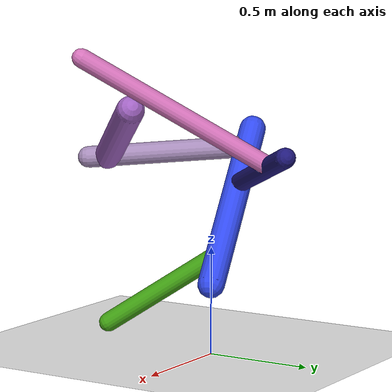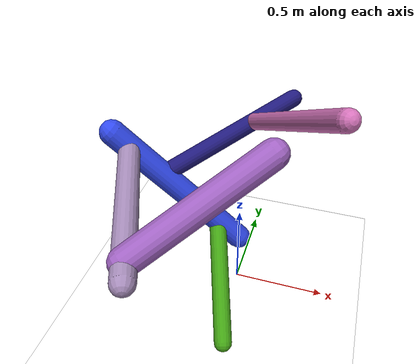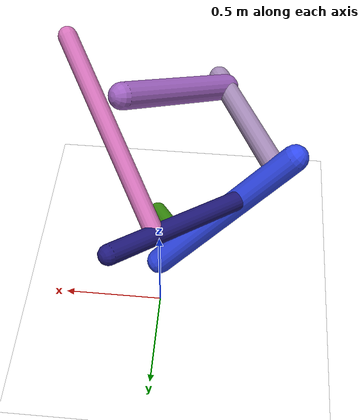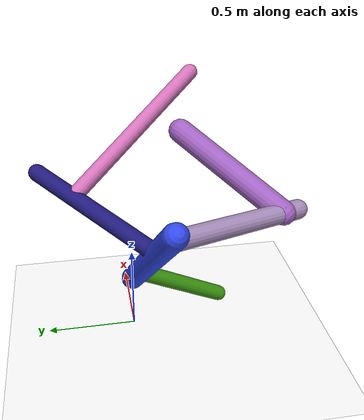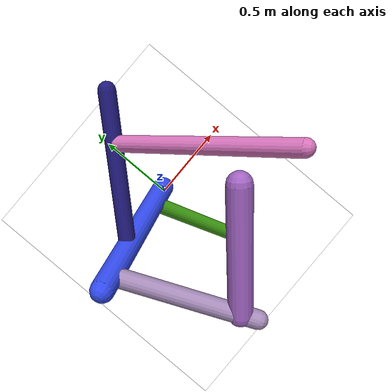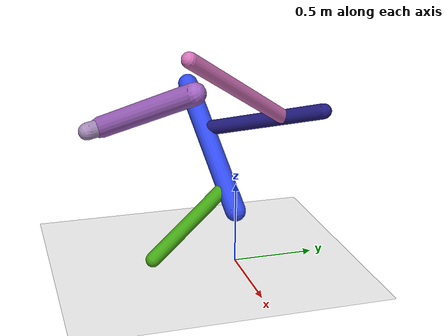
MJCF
<mujoco model="morphology">
  <option timestep="0.01"/>
  <default>
    <default class="/"/>
    <default class="0/"/>
    <default class="0/1/"/>
    <default class="0/2/"/>
    <default class="0/2/3/"/>
    <default class="0/4/"/>
    <default class="0/4/5/"/>
  </default>
  <asset>
    <texture name="texplane" type="2d" builtin="checker" rgb1="0.10000000000000001 0.20000000000000001 0.29999999999999999" rgb2="0.20000000000000001 0.29999999999999999 0.40000000000000002" width="300" height="300"/>
    <material name="MatPlane" class="/" texture="texplane" texrepeat="20 20" specular="1" shininess="1" reflectance="0.5"/>
  </asset>
  <worldbody>
    <light name="//unnamed_light_0" class="/" directional="true" pos="0 0 1.5" dir="0 0 -1.3" cutoff="100" exponent="1" diffuse="1 1 1" specular="0.10000000000000001 0.10000000000000001 0.10000000000000001"/>
    <geom name="ground" class="/" type="plane" size="15 15 0.5" material="MatPlane" rgba="1 1 1 1"/>
    <site name="body" class="/" size="9.9999999999999995e-07 9.9999999999999995e-07 9.9999999999999995e-07" pos="0 0 0.326260170340538"/>
    <body pos="0 0 0.326260170340538" name="0/">
      <freejoint name="0/"/>
      <geom name="0/geom" class="0/" type="capsule" contype="1" conaffinity="1" condim="3" size="0.063108370277140211" rgba="0.19077325673836709 0.28444646380870853 0.91722198996599547 1" friction="0.59999999999999998 0.10000000000000001 0.10000000000000001" fromto="0 0 0 -0.6030728729356124 -0.13709230465460709 0.65169534988977773"/>
      <site name="0/end0" class="0/" size="0.0050000000000000001" pos="-0.6030728729356124 -0.13709230465460709 0.65169534988977773"/>
      <site name="0/attach1" class="0/" size="9.9999999999999995e-07 9.9999999999999995e-07 9.9999999999999995e-07" pos="-0.11388818057513629 -0.025889397199983899 0.12307036349842226"/>
      <body pos="-0.11388818057513629 -0.025889397199983899 0.12307036349842226" name="0/1/">
        <joint name="0/1/joint/" class="0/" type="hinge" axis="0 1 0" limited="true" range="-35.682459871554613 35.682459871554613"/>
        <geom name="0/1/geom" class="0/1/" type="capsule" contype="1" conaffinity="1" condim="3" size="0.045276352336998574" rgba="0.25737596410323305 0.63003456094789956 0.078122239919486192 1" friction="0.59999999999999998 0.10000000000000001 0.10000000000000001" fromto="0 0 0 0.17889900814093906 -0.50289893221146342 -0.3493305319710549"/>
        <site name="0/1/end1" class="0/1/" size="0.0050000000000000001" pos="0.17889900814093906 -0.50289893221146342 -0.3493305319710549"/>
      </body>
      <site name="0/attach2" class="0/" size="9.9999999999999995e-07 9.9999999999999995e-07 9.9999999999999995e-07" pos="-0.38334667904214792 -0.087143498024970831 0.41425383123496867"/>
      <body pos="-0.38334667904214792 -0.087143498024970831 0.41425383123496867" name="0/2/">
        <joint name="0/2/joint/" class="0/" type="hinge" axis="0 0 1" limited="true" range="-37.127736514777311 37.127736514777311"/>
        <geom name="0/2/geom" class="0/2/" type="capsule" contype="1" conaffinity="1" condim="3" size="0.04599434546093175" rgba="0.12702087542613361 0.09944051632355233 0.48043182079228153 1" friction="0.59999999999999998 0.10000000000000001 0.10000000000000001" fromto="0 0 0 0.54118731176134083 0.56203512840236636 0.22140713136750767"/>
        <site name="0/2/end2" class="0/2/" size="0.0050000000000000001" pos="0.54118731176134083 0.56203512840236636 0.22140713136750767"/>
        <site name="0/2/attach3" class="0/2/" size="9.9999999999999995e-07 9.9999999999999995e-07 9.9999999999999995e-07" pos="0.36835115074697006 0.38254090923426826 0.1506974939182838"/>
        <body pos="0.36835115074697006 0.38254090923426826 0.1506974939182838" name="0/2/3/">
          <joint name="0/2/3/joint/" class="0/2/" type="hinge" axis="-0.74481188074778359 0.62083804139375709 0.24457184763441742" limited="true" range="-37.832044795301663 37.832044795301663"/>
          <geom name="0/2/3/geom" class="0/2/3/" type="capsule" contype="1" conaffinity="1" condim="3" size="0.043469981709609209" rgba="0.81804028932815298 0.44138302591499479 0.71535473916304637 1" friction="0.59999999999999998 0.10000000000000001 0.10000000000000001" fromto="0 0 0 0.45724068726580214 -0.69730826645974342 0.48705448692933162"/>
          <site name="0/2/3/end3" class="0/2/3/" size="0.0050000000000000001" pos="0.45724068726580214 -0.69730826645974342 0.48705448692933162"/>
        </body>
      </body>
      <site name="0/attach4" class="0/" size="9.9999999999999995e-07 9.9999999999999995e-07 9.9999999999999995e-07" pos="-0.53190799939150535 -0.12091489565074208 0.57479284068150793"/>
      <body pos="-0.53190799939150535 -0.12091489565074208 0.57479284068150793" name="0/4/">
        <joint name="0/4/joint/" class="0/" type="hinge" axis="0 1 0" limited="true" range="-30.379174622688097 30.379174622688097"/>
        <geom name="0/4/geom" class="0/4/" type="capsule" contype="1" conaffinity="1" condim="3" size="0.052822313894117484" rgba="0.64254767182867001 0.54171636405809587 0.7167727729016069 1" friction="0.59999999999999998 0.10000000000000001 0.10000000000000001" fromto="0 0 0 0.30157309680771638 -0.72470941099975583 -0.068778324051201656"/>
        <site name="0/4/end4" class="0/4/" size="0.0050000000000000001" pos="0.30157309680771638 -0.72470941099975583 -0.068778324051201656"/>
        <site name="0/4/attach5" class="0/4/" size="9.9999999999999995e-07 9.9999999999999995e-07 9.9999999999999995e-07" pos="0.26473296464445445 -0.63617899909032205 -0.06037637250169231"/>
        <body pos="0.26473296464445445 -0.63617899909032205 -0.06037637250169231" name="0/4/5/">
          <joint name="0/4/5/joint/" class="0/4/" type="hinge" axis="-6.9388939039072284e-18 -0.094480159921013149 0.99552674468408919" limited="true" range="-40.214460826890331 40.214460826890331"/>
          <geom name="0/4/5/geom" class="0/4/5/" type="capsule" contype="1" conaffinity="1" condim="3" size="0.065279450745976908" rgba="0.62078723319369822 0.38317957849759765 0.75045147632369569 1" friction="0.59999999999999998 0.10000000000000001 0.10000000000000001" fromto="0 0 0 0.46432530479672596 0.44955241222017328 0.29081576375419216"/>
          <site name="0/4/5/end5" class="0/4/5/" size="0.0050000000000000001" pos="0.46432530479672596 0.44955241222017328 0.29081576375419216"/>
        </body>
      </body>
      <camera name="0/iso" class="0/" mode="trackcom" pos="-2.2999999999999998 -2.2999999999999998 1" xyaxes="0.45000000000000001 -0.45000000000000001 0 0.29999999999999999 0.14999999999999999 0.93999999999999995"/>
    </body>
  </worldbody>
  <actuator>
    <motor name="0/1/motor" class="0/1/" ctrllimited="true" ctrlrange="-1 1" gear="52" joint="0/1/joint/"/>
    <motor name="0/2/motor" class="0/2/" ctrllimited="true" ctrlrange="-1 1" gear="72" joint="0/2/joint/"/>
    <motor name="0/2/3/motor" class="0/2/3/" ctrllimited="true" ctrlrange="-1 1" gear="85" joint="0/2/3/joint/"/>
    <motor name="0/4/motor" class="0/4/" ctrllimited="true" ctrlrange="-1 1" gear="77" joint="0/4/joint/"/>
    <motor name="0/4/5/motor" class="0/4/5/" ctrllimited="true" ctrlrange="-1 1" gear="78" joint="0/4/5/joint/"/>
  </actuator>
  <sensor>
    <subtreelinvel name="velocity" body="0/"/>
  </sensor>
</mujoco>
